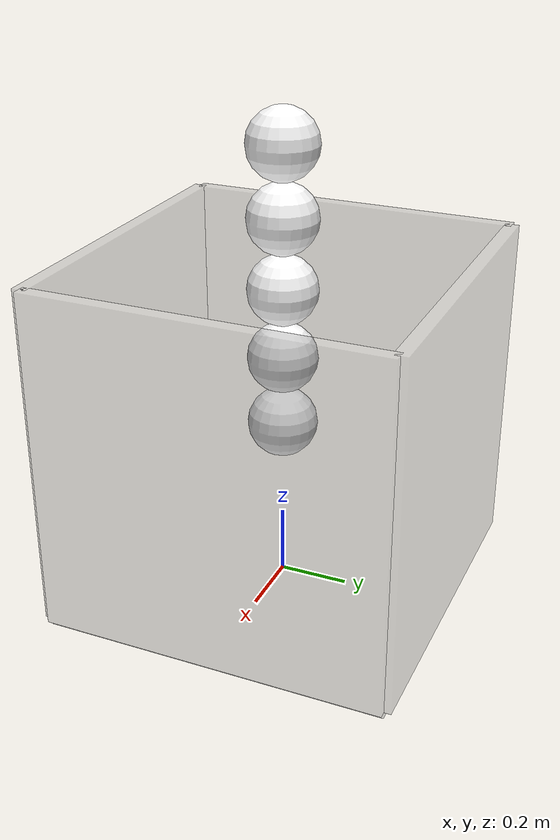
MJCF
<?xml version="1.0"?>
<mujoco model="spheres_in_a_box">
  <option integrator="implicitfast" cone="elliptic" />
  <default>
    <geom solimp="0.9 0.95 0.001" solref="0.01 1"/>
  </default>

  <worldbody>
    <geom name="base" type="box" pos="0.0 0.0 0.0" size="0.5 0.5 0.02" rgba="0.5 0.5 0.5 0.3"/>
    <geom name="left" type="box" pos="0.5 0.0 0.5" size="0.02 0.5 0.5" rgba="0.5 0.5 0.5 0.3"/>
    <geom name="right" type="box" pos="-0.5 0.0 0.5" size="0.02 0.5 0.5" rgba="0.5 0.5 0.5 0.3"/>
    <geom name="front" type="box" pos="0.0 0.5 0.5" size="0.5 0.02 0.5" rgba="0.5 0.5 0.5 0.3"/>
    <geom name="back" type="box" pos="0.0 -0.5 0.5" size="0.5 0.02 0.5" rgba="0.5 0.5 0.5 0.3"/>

    <body>
      <joint type="free"/>
      <geom name="ball1" type="sphere" pos="0.0 0.0 0.5" size="0.1" rgba="1.0 1.0 1.0 1.0"/>
    </body>
    <body>
      <joint type="free"/>
      <geom name="ball2" type="sphere" pos="0.0001 0.0 0.7" size="0.1" rgba="1.0 1.0 1.0 1.0"/>
    </body>
    <body>
      <joint type="free"/>
      <geom name="ball3" type="sphere" pos="0.0 0.0001 0.9" size="0.1" rgba="1.0 1.0 1.0 1.0"/>
    </body>
    <body>
      <joint type="free"/>
      <geom name="ball4" type="sphere" pos="-0.0001 0.0 1.1" size="0.1" rgba="1.0 1.0 1.0 1.0"/>
    </body>
    <body>
      <joint type="free"/>
      <geom name="ball5" type="sphere" pos="0.0 -0.0001 1.3" size="0.1" rgba="1.0 1.0 1.0 1.0"/>
    </body>
  </worldbody>
</mujoco>
